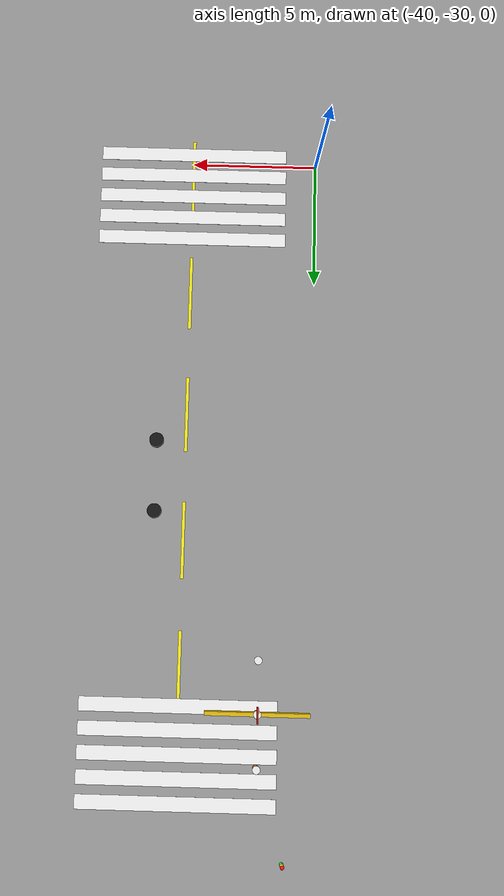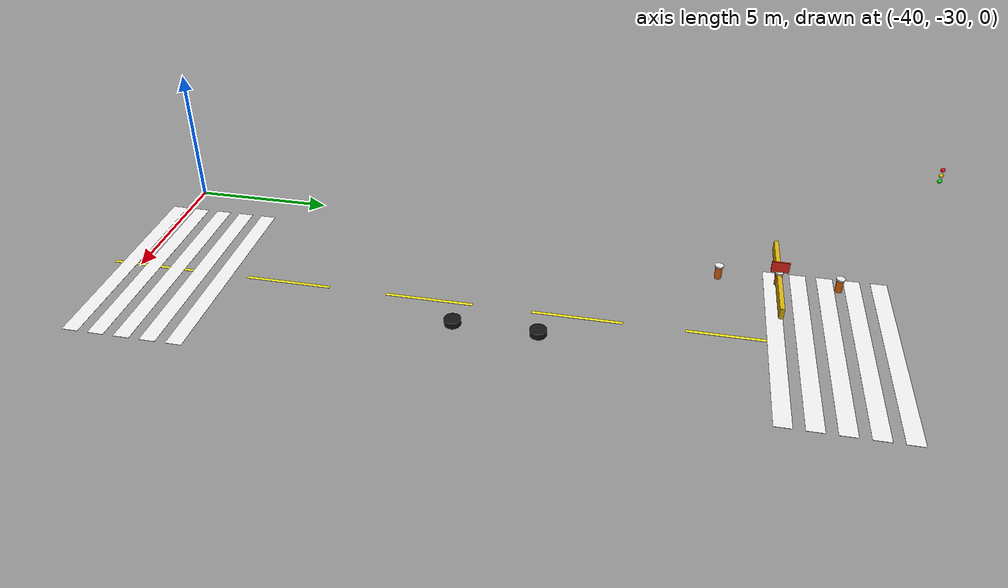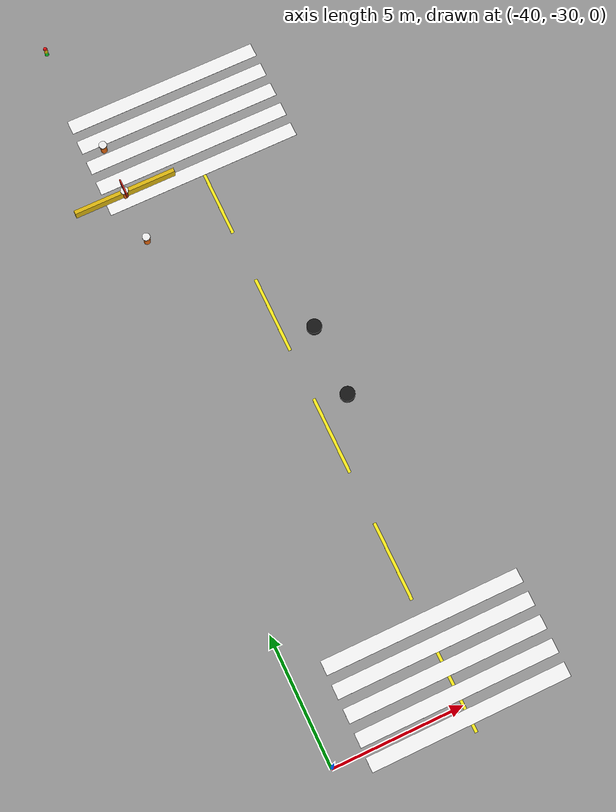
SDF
<sdf version="1.9">
 <world name="city">
  <model name="cw_n_93">
   <static>true</static>
   <pose>-35.0 -30.425 0.013000000000000001 0 0 0</pose>
   <link name="l">
    <visual name="v">
     <geometry><box><size>7.6 0.55 0.005</size></box></geometry>
     <material>
      <ambient>0.94 0.94 0.94 1</ambient>
      <diffuse>0.94 0.94 0.94 1</diffuse>
      <specular>0.04 0.04 0.04 1</specular>
     </material>
    </visual>
   </link>
  </model>
  <model name="cw_n_97">
   <static>true</static>
   <pose>-35.0 -29.525 0.013000000000000001 0 0 0</pose>
   <link name="l">
    <visual name="v">
     <geometry><box><size>7.6 0.55 0.005</size></box></geometry>
     <material>
      <ambient>0.94 0.94 0.94 1</ambient>
      <diffuse>0.94 0.94 0.94 1</diffuse>
      <specular>0.04 0.04 0.04 1</specular>
     </material>
    </visual>
   </link>
  </model>
  <model name="cw_n_101">
   <static>true</static>
   <pose>-35.0 -28.625 0.013000000000000001 0 0 0</pose>
   <link name="l">
    <visual name="v">
     <geometry><box><size>7.6 0.55 0.005</size></box></geometry>
     <material>
      <ambient>0.94 0.94 0.94 1</ambient>
      <diffuse>0.94 0.94 0.94 1</diffuse>
      <specular>0.04 0.04 0.04 1</specular>
     </material>
    </visual>
   </link>
  </model>
  <model name="cw_n_105">
   <static>true</static>
   <pose>-35.0 -27.725 0.013000000000000001 0 0 0</pose>
   <link name="l">
    <visual name="v">
     <geometry><box><size>7.6 0.55 0.005</size></box></geometry>
     <material>
      <ambient>0.94 0.94 0.94 1</ambient>
      <diffuse>0.94 0.94 0.94 1</diffuse>
      <specular>0.04 0.04 0.04 1</specular>
     </material>
    </visual>
   </link>
  </model>
  <model name="cw_n_109">
   <static>true</static>
   <pose>-35.0 -26.825 0.013000000000000001 0 0 0</pose>
   <link name="l">
    <visual name="v">
     <geometry><box><size>7.6 0.55 0.005</size></box></geometry>
     <material>
      <ambient>0.94 0.94 0.94 1</ambient>
      <diffuse>0.94 0.94 0.94 1</diffuse>
      <specular>0.04 0.04 0.04 1</specular>
     </material>
    </visual>
   </link>
  </model>
  <model name="cw_s_112">
   <static>true</static>
   <pose>-35.0 -4.575 0.013000000000000001 0 0 0</pose>
   <link name="l">
    <visual name="v">
     <geometry><box><size>7.6 0.55 0.005</size></box></geometry>
     <material>
      <ambient>0.94 0.94 0.94 1</ambient>
      <diffuse>0.94 0.94 0.94 1</diffuse>
      <specular>0.04 0.04 0.04 1</specular>
     </material>
    </visual>
   </link>
  </model>
  <model name="cw_s_116">
   <static>true</static>
   <pose>-35.0 -5.475 0.013000000000000001 0 0 0</pose>
   <link name="l">
    <visual name="v">
     <geometry><box><size>7.6 0.55 0.005</size></box></geometry>
     <material>
      <ambient>0.94 0.94 0.94 1</ambient>
      <diffuse>0.94 0.94 0.94 1</diffuse>
      <specular>0.04 0.04 0.04 1</specular>
     </material>
    </visual>
   </link>
  </model>
  <model name="cw_s_120">
   <static>true</static>
   <pose>-35.0 -6.375 0.013000000000000001 0 0 0</pose>
   <link name="l">
    <visual name="v">
     <geometry><box><size>7.6 0.55 0.005</size></box></geometry>
     <material>
      <ambient>0.94 0.94 0.94 1</ambient>
      <diffuse>0.94 0.94 0.94 1</diffuse>
      <specular>0.04 0.04 0.04 1</specular>
     </material>
    </visual>
   </link>
  </model>
  <model name="cw_s_124">
   <static>true</static>
   <pose>-35.0 -7.275 0.013000000000000001 0 0 0</pose>
   <link name="l">
    <visual name="v">
     <geometry><box><size>7.6 0.55 0.005</size></box></geometry>
     <material>
      <ambient>0.94 0.94 0.94 1</ambient>
      <diffuse>0.94 0.94 0.94 1</diffuse>
      <specular>0.04 0.04 0.04 1</specular>
     </material>
    </visual>
   </link>
  </model>
  <model name="cw_s_128">
   <static>true</static>
   <pose>-35.0 -8.175 0.013000000000000001 0 0 0</pose>
   <link name="l">
    <visual name="v">
     <geometry><box><size>7.6 0.55 0.005</size></box></geometry>
     <material>
      <ambient>0.94 0.94 0.94 1</ambient>
      <diffuse>0.94 0.94 0.94 1</diffuse>
      <specular>0.04 0.04 0.04 1</specular>
     </material>
    </visual>
   </link>
  </model>
  <model name="dash_278">
   <static>true</static>
   <pose>-35.0 -29.5 0.012 0 0 0</pose>
   <link name="l">
    <visual name="v">
     <geometry><box><size>0.12 3.0 0.003</size></box></geometry>
     <material>
      <ambient>0.95 0.9 0.1 1</ambient>
      <diffuse>0.95 0.9 0.1 1</diffuse>
      <specular>0.04 0.04 0.04 1</specular>
     </material>
    </visual>
   </link>
  </model>
  <model name="dash_279">
   <static>true</static>
   <pose>-35.0 -24.5 0.012 0 0 0</pose>
   <link name="l">
    <visual name="v">
     <geometry><box><size>0.12 3.0 0.003</size></box></geometry>
     <material>
      <ambient>0.95 0.9 0.1 1</ambient>
      <diffuse>0.95 0.9 0.1 1</diffuse>
      <specular>0.04 0.04 0.04 1</specular>
     </material>
    </visual>
   </link>
  </model>
  <model name="dash_280">
   <static>true</static>
   <pose>-35.0 -19.5 0.012 0 0 0</pose>
   <link name="l">
    <visual name="v">
     <geometry><box><size>0.12 3.0 0.003</size></box></geometry>
     <material>
      <ambient>0.95 0.9 0.1 1</ambient>
      <diffuse>0.95 0.9 0.1 1</diffuse>
      <specular>0.04 0.04 0.04 1</specular>
     </material>
    </visual>
   </link>
  </model>
  <model name="dash_281">
   <static>true</static>
   <pose>-35.0 -14.5 0.012 0 0 0</pose>
   <link name="l">
    <visual name="v">
     <geometry><box><size>0.12 3.0 0.003</size></box></geometry>
     <material>
      <ambient>0.95 0.9 0.1 1</ambient>
      <diffuse>0.95 0.9 0.1 1</diffuse>
      <specular>0.04 0.04 0.04 1</specular>
     </material>
    </visual>
   </link>
  </model>
  <model name="dash_282">
   <static>true</static>
   <pose>-35.0 -9.5 0.012 0 0 0</pose>
   <link name="l">
    <visual name="v">
     <geometry><box><size>0.12 3.0 0.003</size></box></geometry>
     <material>
      <ambient>0.95 0.9 0.1 1</ambient>
      <diffuse>0.95 0.9 0.1 1</diffuse>
      <specular>0.04 0.04 0.04 1</specular>
     </material>
    </visual>
   </link>
  </model>
  <model name="rcar0_w_512">
   <static>true</static>
   <pose>-33.85 -18.4 0.158 0 0 1.5708</pose>
   <link name="l">
    <visual name="v">
     <geometry><cylinder><radius>0.28</radius><length>0.22</length></cylinder></geometry>
     <material><ambient>0.08 0.08 0.08 1</ambient><diffuse>0.08 0.08 0.08 1</diffuse></material>
    </visual>
   </link>
  </model>
  <model name="rcar0_w_514">
   <static>true</static>
   <pose>-33.85 -15.6 0.158 0 0 1.5708</pose>
   <link name="l">
    <visual name="v">
     <geometry><cylinder><radius>0.28</radius><length>0.22</length></cylinder></geometry>
     <material><ambient>0.08 0.08 0.08 1</ambient><diffuse>0.08 0.08 0.08 1</diffuse></material>
    </visual>
   </link>
  </model>
  <model name="tl_-35_0_0_l0_717">
   <static>true</static>
   <pose>-38.65113407699936 -3.6518097826735607 4.705 0 0 0</pose>
   <link name="l">
    <visual name="v">
     <geometry><sphere><radius>0.07</radius></sphere></geometry>
     <material><ambient>0.95 0.08 0.08 1</ambient><diffuse>0.95 0.08 0.08 1</diffuse></material>
    </visual>
   </link>
  </model>
  <model name="tl_-35_0_0_l1_718">
   <static>true</static>
   <pose>-38.65113407699936 -3.6518097826735607 4.505 0 0 0</pose>
   <link name="l">
    <visual name="v">
     <geometry><sphere><radius>0.07</radius></sphere></geometry>
     <material><ambient>0.9 0.8 0.05 1</ambient><diffuse>0.9 0.8 0.05 1</diffuse></material>
    </visual>
   </link>
  </model>
  <model name="tl_-35_0_0_l2_719">
   <static>true</static>
   <pose>-38.65113407699936 -3.6518097826735607 4.305 0 0 0</pose>
   <link name="l">
    <visual name="v">
     <geometry><sphere><radius>0.07</radius></sphere></geometry>
     <material><ambient>0.05 0.85 0.15 1</ambient><diffuse>0.05 0.85 0.15 1</diffuse></material>
    </visual>
   </link>
  </model>
  <model name="constr0_cone0_906">
   <static>true</static>
   <pose>-38 -10.0 0.375 0 0 0</pose>
   <link name="l">
    <collision name="c">
     <geometry><cylinder><radius>0.12</radius><length>0.5</length></cylinder></geometry>
    </collision>
    <visual name="v">
     <geometry><cylinder><radius>0.12</radius><length>0.5</length></cylinder></geometry>
     <material><ambient>0.9 0.4 0.05 1</ambient><diffuse>0.9 0.4 0.05 1</diffuse></material>
    </visual>
   </link>
  </model>
  <model name="constr0_cw0_907">
   <static>true</static>
   <pose>-38 -10.0 0.605 0 0 0</pose>
   <link name="l">
    <visual name="v">
     <geometry><cylinder><radius>0.15</radius><length>0.06</length></cylinder></geometry>
     <material><ambient>0.92 0.92 0.92 1</ambient><diffuse>0.92 0.92 0.92 1</diffuse></material>
    </visual>
   </link>
  </model>
  <model name="constr0_cone1_908">
   <static>true</static>
   <pose>-38 -8.0 0.375 0 0 0</pose>
   <link name="l">
    <collision name="c">
     <geometry><cylinder><radius>0.12</radius><length>0.5</length></cylinder></geometry>
    </collision>
    <visual name="v">
     <geometry><cylinder><radius>0.12</radius><length>0.5</length></cylinder></geometry>
     <material><ambient>0.9 0.4 0.05 1</ambient><diffuse>0.9 0.4 0.05 1</diffuse></material>
    </visual>
   </link>
  </model>
  <model name="constr0_cw1_909">
   <static>true</static>
   <pose>-38 -8.0 0.605 0 0 0</pose>
   <link name="l">
    <visual name="v">
     <geometry><cylinder><radius>0.15</radius><length>0.06</length></cylinder></geometry>
     <material><ambient>0.92 0.92 0.92 1</ambient><diffuse>0.92 0.92 0.92 1</diffuse></material>
    </visual>
   </link>
  </model>
  <model name="constr0_cone2_910">
   <static>true</static>
   <pose>-38 -6.0 0.375 0 0 0</pose>
   <link name="l">
    <collision name="c">
     <geometry><cylinder><radius>0.12</radius><length>0.5</length></cylinder></geometry>
    </collision>
    <visual name="v">
     <geometry><cylinder><radius>0.12</radius><length>0.5</length></cylinder></geometry>
     <material><ambient>0.9 0.4 0.05 1</ambient><diffuse>0.9 0.4 0.05 1</diffuse></material>
    </visual>
   </link>
  </model>
  <model name="constr0_cw2_911">
   <static>true</static>
   <pose>-38 -6.0 0.605 0 0 0</pose>
   <link name="l">
    <visual name="v">
     <geometry><cylinder><radius>0.15</radius><length>0.06</length></cylinder></geometry>
     <material><ambient>0.92 0.92 0.92 1</ambient><diffuse>0.92 0.92 0.92 1</diffuse></material>
    </visual>
   </link>
  </model>
  <model name="constr0_bar_912">
   <static>true</static>
   <pose>-38 -8 0.375 0 0 1.5708</pose>
   <link name="l">
    <collision name="c"><geometry><box><size>0.15 4.0 0.4</size></box></geometry></collision>
    <visual name="v">
     <geometry><box><size>0.15 4.0 0.4</size></box></geometry>
     <material>
      <ambient>0.85 0.7 0.05 1</ambient>
      <diffuse>0.85 0.7 0.05 1</diffuse>
      <specular>0.04 0.04 0.04 1</specular>
     </material>
    </visual>
   </link>
  </model>
  <model name="constr0_sign_913">
   <static>true</static>
   <pose>-38 -8 0.825 0 0 0</pose>
   <link name="l">
    <visual name="v">
     <geometry><box><size>0.05 0.6 0.4</size></box></geometry>
     <material>
      <ambient>0.9 0.15 0.1 1</ambient>
      <diffuse>0.9 0.15 0.1 1</diffuse>
      <specular>0.04 0.04 0.04 1</specular>
     </material>
    </visual>
   </link>
  </model>
 </world>
</sdf>
